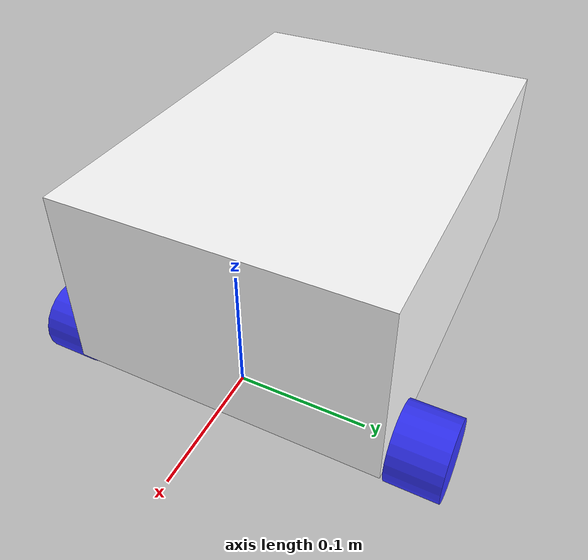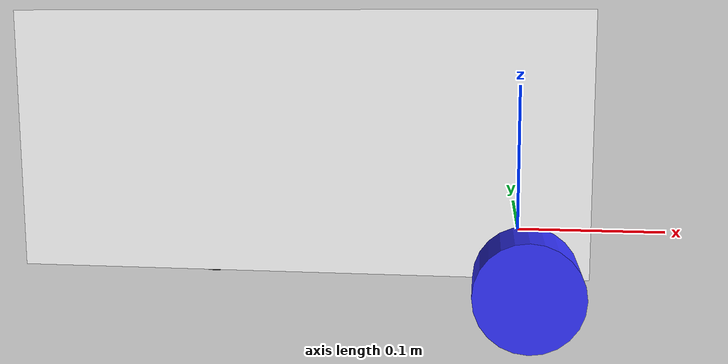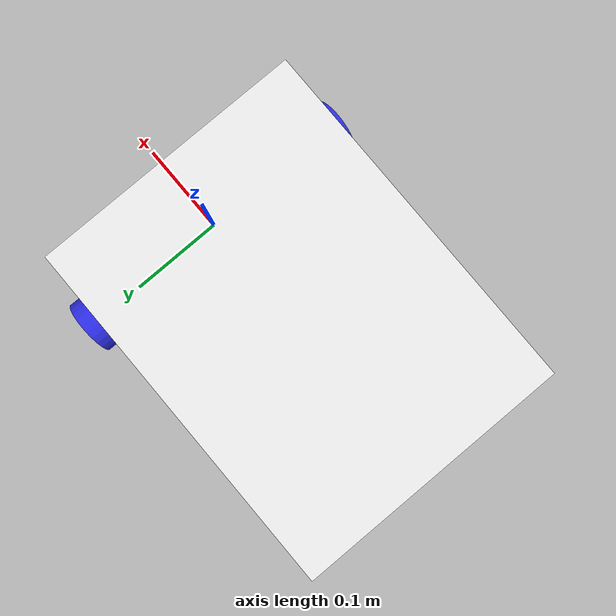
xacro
<?xml version="1.0"?>
<robot xmlns:xacro="http://www.ros.org/wiki/xacro" >

	<xacro:include filename="inertial_macros.xacro"/>

    <material name="white">
        <color rgba="1 1 1 1" />
    </material>

    <material name="orange">
        <color rgba="1 0.3 0.1 1"/>
    </material>

    <material name="blue">
        <color rgba="0.2 0.2 1 1"/>
    </material>

    <material name="black">
        <color rgba="0 0 0 1"/>
    </material>

    <material name="red">
        <color rgba="1 0 0 1"/>
    </material>
   <!-- BASE LINK -->

    <link name="base_link">

    </link>

    <!-- BASE_FOOTPRINT LINK -->

    <joint name="base_footprint_joint" type="fixed">
        <parent link="base_link"/>
        <child link="base_footprint"/>
        <origin xyz="0 0 0" rpy="0 0 0"/>
    </joint>

    <link name="base_footprint">
    </link>

    <!-- Chassis Link -->

    <joint name="chassis_joint" type="fixed">
        <parent link="base_link"/>
        <child link="chassis"/>
        <origin xyz="0.035 0 0"/>
    </joint>

    <link name="chassis">
        <visual>
        	<origin xyz="-0.165 0 0.075"/>
            <geometry>
                <box size="0.33 0.25 0.15"/>
            </geometry>
            <material name="white"/>
        </visual>
        <collision>
            <origin xyz="-0.165 0 0.075"/>
            <geometry>
                <box size="0.33 0.25 0.15"/>
            </geometry>
        </collision>
        <xacro:inertial_box mass="3" x="0.33" y="0.24" z="0.15">
            <origin xyz="-0.165 0 0.075" rpy="0 0 0"/>
        </xacro:inertial_box>
    </link>

    <gazebo reference="chassis">
        <material>Gazebo/White</material>
    </gazebo>

    <!-- LEFT WHEEL LINK -->

    <joint name="left_wheel_joint" type="continuous">
        <parent link="base_link"/>
        <child link="left_wheel"/>
        <origin xyz="0 0.145 0" rpy="-${pi/2} 0 0" />
        <axis xyz="0 0 1"/>
    </joint>
     <!-- length here is the thickness of the wheel -->
    <link name="left_wheel">
        <visual>
            <geometry>
                <cylinder radius="0.03" length="0.04"/>
            </geometry>
            <material name="blue"/>
        </visual>
        <collision>
            <geometry>
                <sphere radius="0.03"/>
            </geometry>
        </collision>
        <xacro:inertial_cylinder mass="0.1" length="0.04" radius="0.03">
            <origin xyz="0 0 0" rpy="0 0 0"/>
        </xacro:inertial_cylinder>
    </link>

    <gazebo reference="left_wheel">
        <material>Gazebo/Blue</material>
    </gazebo>

    <!-- RIGHT WHEEL LINK -->

    <joint name="right_wheel_joint" type="continuous">
        <parent link="base_link"/>
        <child link="right_wheel"/>
        <origin xyz="0 -0.145 0" rpy="${pi/2} 0 0" />
        <axis xyz="0 0 -1"/>
    </joint>

    <link name="right_wheel">
        <visual>
            <geometry>
                <cylinder radius="0.03" length="0.04"/>
            </geometry>
            <material name="blue"/>
        </visual>
        <collision>
            <geometry>
                <sphere radius="0.03"/>
            </geometry>
        </collision>
        <xacro:inertial_cylinder mass="0.1" length="0.04" radius="0.03">
            <origin xyz="0 0 0" rpy="0 0 0"/>
        </xacro:inertial_cylinder>
    </link>

    <gazebo reference="right_wheel">
        <material>Gazebo/Blue</material>
    </gazebo>

	<!-- CASTER WHEEL LINK -->

    <joint name="caster_wheel_joint" type="fixed">
        <parent link="chassis"/>
        <child link="caster_wheel"/>
        <origin xyz="-0.25 0 0"/>
    </joint>

    <link name="caster_wheel">
        <visual>
            <geometry>
                <sphere radius="0.035"/>
            </geometry>
            <material name="black"/>
        </visual>
        <collision>
            <geometry>
                <sphere radius="0.035"/>
            </geometry>
        </collision>
        <xacro:inertial_sphere mass="0.1" radius="0.05">
            <origin xyz="0 0 0" rpy="0 0 0"/>
        </xacro:inertial_sphere>
    </link>

    <gazebo reference="caster_wheel">
        <material>Gazebo/Black</material>
        <mu1 value="0.001"/>
        <mu2 value="0.001"/>
    </gazebo>

</robot>
